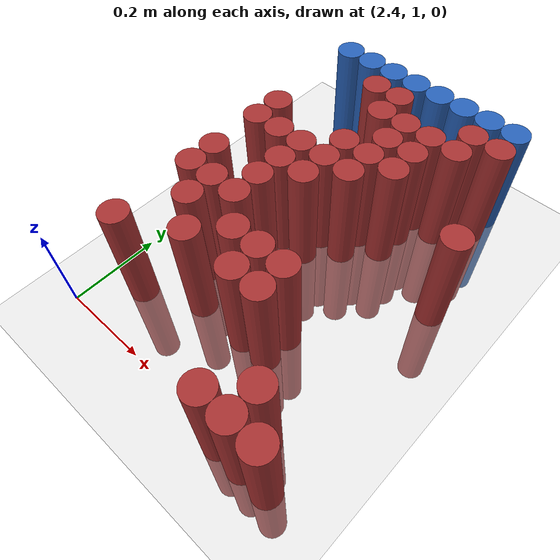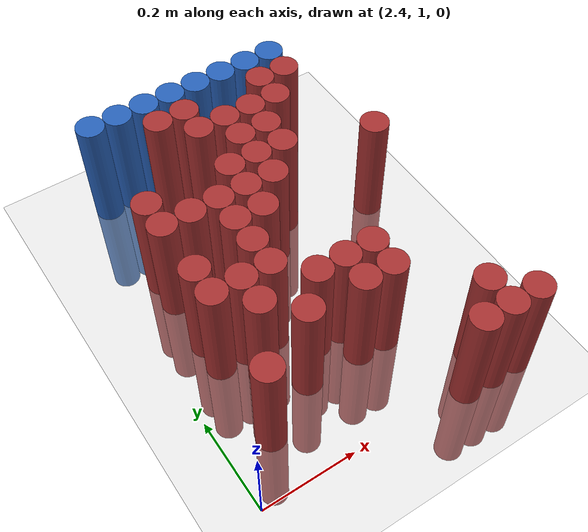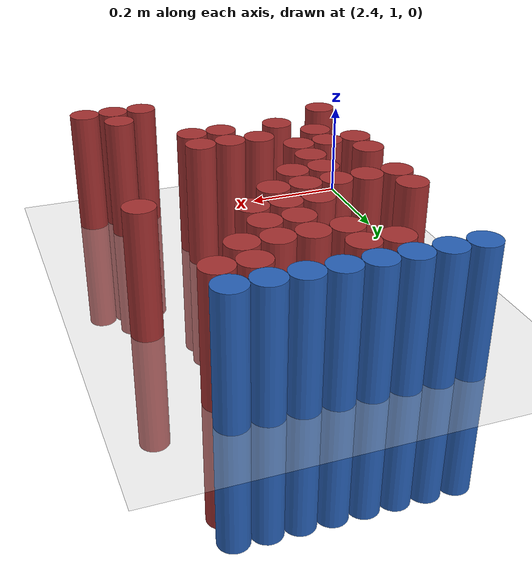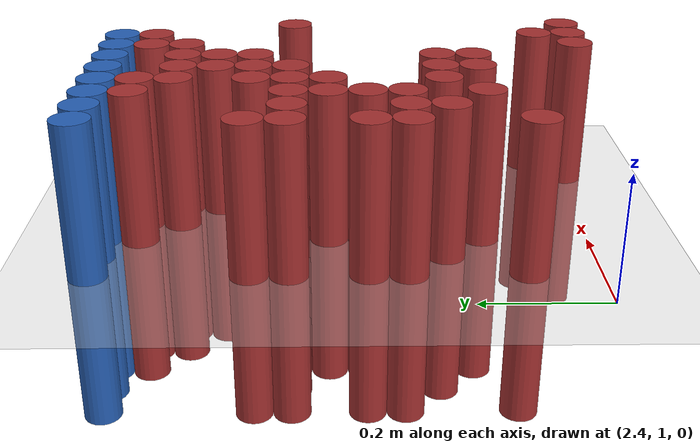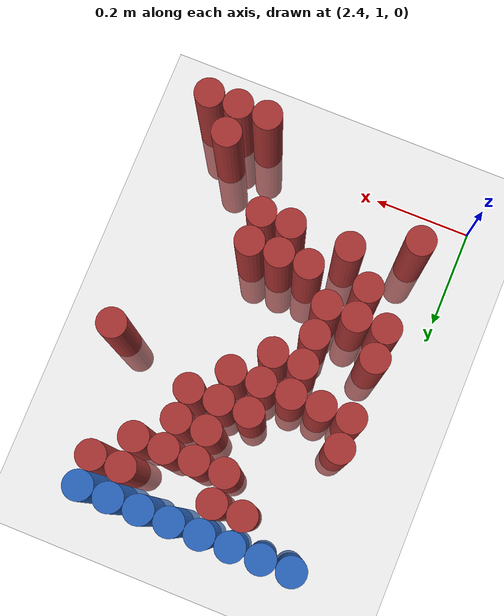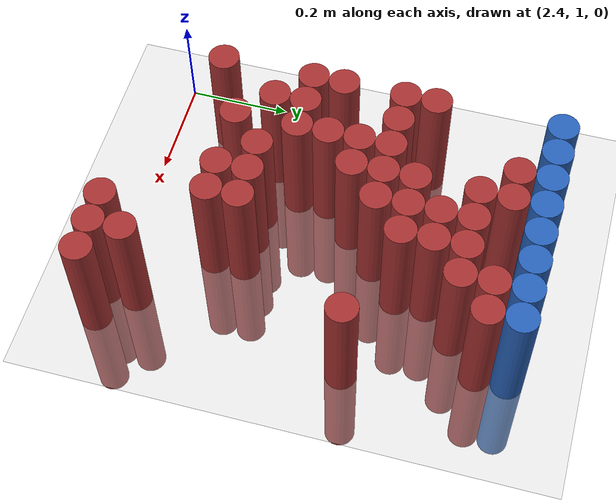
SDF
<sdf version="1.6">
 <world name="default">
  <model name="ground_plane">
   <static>1</static>
   <link name="link">
    <collision name="collision">
     <geometry><plane><normal>0 0 1</normal><size>100 100</size></plane></geometry>
     <surface><friction><ode><mu>100</mu><mu2>50</mu2></ode></friction></surface>
    </collision>
    <visual name="visual">
     <cast_shadows>0</cast_shadows>
     <geometry><plane><normal>0 0 1</normal><size>100 100</size></plane></geometry>
     <material>
      <script><uri>file://media/materials/scripts/gazebo.material</uri><name>Gazebo/Grey</name></script>
     </material>
    </visual>
   </link>
  </model>
  <model name="unit_cylinder_102">
   <static>1</static>
   <pose>2.490000 1.770000 0.000000 0.000000 0.000000 0.000000</pose>
   <link name="link">
    <inertial>
     <mass>1</mass>
     <inertia><ixx>0.145833</ixx><ixy>0</ixy><ixz>0</ixz><iyy>0.145833</iyy><iyz>0</iyz><izz>0.125</izz></inertia>
    </inertial>
    <collision name="collision">
     <geometry><cylinder><radius>0.030000</radius><length>0.5</length></cylinder></geometry>
    </collision>
    <visual name="visual">
     <geometry><cylinder><radius>0.030000</radius><length>0.5</length></cylinder></geometry>
     <material>
      <ambient>0.152000 0.379000 0.720000 1</ambient>
      <diffuse>0.152000 0.379000 0.720000 1</diffuse>
     </material>
     <material>
      <script><name>Gazebo/Grey</name><uri>file://media/materials/scripts/gazebo.material</uri></script>
     </material>
    </visual>
   </link>
  </model>
  <model name="unit_cylinder_103">
   <static>1</static>
   <pose>2.550000 1.770000 0.000000 0.000000 0.000000 0.000000</pose>
   <link name="link">
    <inertial>
     <mass>1</mass>
     <inertia><ixx>0.145833</ixx><ixy>0</ixy><ixz>0</ixz><iyy>0.145833</iyy><iyz>0</iyz><izz>0.125</izz></inertia>
    </inertial>
    <collision name="collision">
     <geometry><cylinder><radius>0.030000</radius><length>0.5</length></cylinder></geometry>
    </collision>
    <visual name="visual">
     <geometry><cylinder><radius>0.030000</radius><length>0.5</length></cylinder></geometry>
     <material>
      <ambient>0.152000 0.379000 0.720000 1</ambient>
      <diffuse>0.152000 0.379000 0.720000 1</diffuse>
     </material>
     <material>
      <script><name>Gazebo/Grey</name><uri>file://media/materials/scripts/gazebo.material</uri></script>
     </material>
    </visual>
   </link>
  </model>
  <model name="unit_cylinder_104">
   <static>1</static>
   <pose>2.610000 1.770000 0.000000 0.000000 0.000000 0.000000</pose>
   <link name="link">
    <inertial>
     <mass>1</mass>
     <inertia><ixx>0.145833</ixx><ixy>0</ixy><ixz>0</ixz><iyy>0.145833</iyy><iyz>0</iyz><izz>0.125</izz></inertia>
    </inertial>
    <collision name="collision">
     <geometry><cylinder><radius>0.030000</radius><length>0.5</length></cylinder></geometry>
    </collision>
    <visual name="visual">
     <geometry><cylinder><radius>0.030000</radius><length>0.5</length></cylinder></geometry>
     <material>
      <ambient>0.152000 0.379000 0.720000 1</ambient>
      <diffuse>0.152000 0.379000 0.720000 1</diffuse>
     </material>
     <material>
      <script><name>Gazebo/Grey</name><uri>file://media/materials/scripts/gazebo.material</uri></script>
     </material>
    </visual>
   </link>
  </model>
  <model name="unit_cylinder_105">
   <static>1</static>
   <pose>2.670000 1.770000 0.000000 0.000000 0.000000 0.000000</pose>
   <link name="link">
    <inertial>
     <mass>1</mass>
     <inertia><ixx>0.145833</ixx><ixy>0</ixy><ixz>0</ixz><iyy>0.145833</iyy><iyz>0</iyz><izz>0.125</izz></inertia>
    </inertial>
    <collision name="collision">
     <geometry><cylinder><radius>0.030000</radius><length>0.5</length></cylinder></geometry>
    </collision>
    <visual name="visual">
     <geometry><cylinder><radius>0.030000</radius><length>0.5</length></cylinder></geometry>
     <material>
      <ambient>0.152000 0.379000 0.720000 1</ambient>
      <diffuse>0.152000 0.379000 0.720000 1</diffuse>
     </material>
     <material>
      <script><name>Gazebo/Grey</name><uri>file://media/materials/scripts/gazebo.material</uri></script>
     </material>
    </visual>
   </link>
  </model>
  <model name="unit_cylinder_106">
   <static>1</static>
   <pose>2.730000 1.770000 0.000000 0.000000 0.000000 0.000000</pose>
   <link name="link">
    <inertial>
     <mass>1</mass>
     <inertia><ixx>0.145833</ixx><ixy>0</ixy><ixz>0</ixz><iyy>0.145833</iyy><iyz>0</iyz><izz>0.125</izz></inertia>
    </inertial>
    <collision name="collision">
     <geometry><cylinder><radius>0.030000</radius><length>0.5</length></cylinder></geometry>
    </collision>
    <visual name="visual">
     <geometry><cylinder><radius>0.030000</radius><length>0.5</length></cylinder></geometry>
     <material>
      <ambient>0.152000 0.379000 0.720000 1</ambient>
      <diffuse>0.152000 0.379000 0.720000 1</diffuse>
     </material>
     <material>
      <script><name>Gazebo/Grey</name><uri>file://media/materials/scripts/gazebo.material</uri></script>
     </material>
    </visual>
   </link>
  </model>
  <model name="unit_cylinder_107">
   <static>1</static>
   <pose>2.790000 1.770000 0.000000 0.000000 0.000000 0.000000</pose>
   <link name="link">
    <inertial>
     <mass>1</mass>
     <inertia><ixx>0.145833</ixx><ixy>0</ixy><ixz>0</ixz><iyy>0.145833</iyy><iyz>0</iyz><izz>0.125</izz></inertia>
    </inertial>
    <collision name="collision">
     <geometry><cylinder><radius>0.030000</radius><length>0.5</length></cylinder></geometry>
    </collision>
    <visual name="visual">
     <geometry><cylinder><radius>0.030000</radius><length>0.5</length></cylinder></geometry>
     <material>
      <ambient>0.152000 0.379000 0.720000 1</ambient>
      <diffuse>0.152000 0.379000 0.720000 1</diffuse>
     </material>
     <material>
      <script><name>Gazebo/Grey</name><uri>file://media/materials/scripts/gazebo.material</uri></script>
     </material>
    </visual>
   </link>
  </model>
  <model name="unit_cylinder_108">
   <static>1</static>
   <pose>2.850000 1.770000 0.000000 0.000000 0.000000 0.000000</pose>
   <link name="link">
    <inertial>
     <mass>1</mass>
     <inertia><ixx>0.145833</ixx><ixy>0</ixy><ixz>0</ixz><iyy>0.145833</iyy><iyz>0</iyz><izz>0.125</izz></inertia>
    </inertial>
    <collision name="collision">
     <geometry><cylinder><radius>0.030000</radius><length>0.5</length></cylinder></geometry>
    </collision>
    <visual name="visual">
     <geometry><cylinder><radius>0.030000</radius><length>0.5</length></cylinder></geometry>
     <material>
      <ambient>0.152000 0.379000 0.720000 1</ambient>
      <diffuse>0.152000 0.379000 0.720000 1</diffuse>
     </material>
     <material>
      <script><name>Gazebo/Grey</name><uri>file://media/materials/scripts/gazebo.material</uri></script>
     </material>
    </visual>
   </link>
  </model>
  <model name="unit_cylinder_109">
   <static>1</static>
   <pose>2.910000 1.770000 0.000000 0.000000 0.000000 0.000000</pose>
   <link name="link">
    <inertial>
     <mass>1</mass>
     <inertia><ixx>0.145833</ixx><ixy>0</ixy><ixz>0</ixz><iyy>0.145833</iyy><iyz>0</iyz><izz>0.125</izz></inertia>
    </inertial>
    <collision name="collision">
     <geometry><cylinder><radius>0.030000</radius><length>0.5</length></cylinder></geometry>
    </collision>
    <visual name="visual">
     <geometry><cylinder><radius>0.030000</radius><length>0.5</length></cylinder></geometry>
     <material>
      <ambient>0.152000 0.379000 0.720000 1</ambient>
      <diffuse>0.152000 0.379000 0.720000 1</diffuse>
     </material>
     <material>
      <script><name>Gazebo/Grey</name><uri>file://media/materials/scripts/gazebo.material</uri></script>
     </material>
    </visual>
   </link>
  </model>
  <model name="unit_cylinder_128">
   <static>1</static>
   <pose>2.610000 1.710000 0.000000 0.000000 0.000000 0.000000</pose>
   <link name="link">
    <inertial>
     <mass>1</mass>
     <inertia><ixx>0.145833</ixx><ixy>0</ixy><ixz>0</ixz><iyy>0.145833</iyy><iyz>0</iyz><izz>0.125</izz></inertia>
    </inertial>
    <collision name="collision">
     <geometry><cylinder><radius>0.030000</radius><length>0.5</length></cylinder></geometry>
    </collision>
    <visual name="visual">
     <geometry><cylinder><radius>0.030000</radius><length>0.5</length></cylinder></geometry>
     <material>
      <ambient>0.648000 0.192000 0.192000 1</ambient>
      <diffuse>0.648000 0.192000 0.192000 1</diffuse>
     </material>
     <material>
      <script><name>Gazebo/Grey</name><uri>file://media/materials/scripts/gazebo.material</uri></script>
     </material>
    </visual>
   </link>
  </model>
  <model name="unit_cylinder_129">
   <static>1</static>
   <pose>2.670000 1.710000 0.000000 0.000000 0.000000 0.000000</pose>
   <link name="link">
    <inertial>
     <mass>1</mass>
     <inertia><ixx>0.145833</ixx><ixy>0</ixy><ixz>0</ixz><iyy>0.145833</iyy><iyz>0</iyz><izz>0.125</izz></inertia>
    </inertial>
    <collision name="collision">
     <geometry><cylinder><radius>0.030000</radius><length>0.5</length></cylinder></geometry>
    </collision>
    <visual name="visual">
     <geometry><cylinder><radius>0.030000</radius><length>0.5</length></cylinder></geometry>
     <material>
      <ambient>0.648000 0.192000 0.192000 1</ambient>
      <diffuse>0.648000 0.192000 0.192000 1</diffuse>
     </material>
     <material>
      <script><name>Gazebo/Grey</name><uri>file://media/materials/scripts/gazebo.material</uri></script>
     </material>
    </visual>
   </link>
  </model>
  <model name="unit_cylinder_130">
   <static>1</static>
   <pose>2.850000 1.710000 0.000000 0.000000 0.000000 0.000000</pose>
   <link name="link">
    <inertial>
     <mass>1</mass>
     <inertia><ixx>0.145833</ixx><ixy>0</ixy><ixz>0</ixz><iyy>0.145833</iyy><iyz>0</iyz><izz>0.125</izz></inertia>
    </inertial>
    <collision name="collision">
     <geometry><cylinder><radius>0.030000</radius><length>0.5</length></cylinder></geometry>
    </collision>
    <visual name="visual">
     <geometry><cylinder><radius>0.030000</radius><length>0.5</length></cylinder></geometry>
     <material>
      <ambient>0.648000 0.192000 0.192000 1</ambient>
      <diffuse>0.648000 0.192000 0.192000 1</diffuse>
     </material>
     <material>
      <script><name>Gazebo/Grey</name><uri>file://media/materials/scripts/gazebo.material</uri></script>
     </material>
    </visual>
   </link>
  </model>
  <model name="unit_cylinder_131">
   <static>1</static>
   <pose>2.910000 1.710000 0.000000 0.000000 0.000000 0.000000</pose>
   <link name="link">
    <inertial>
     <mass>1</mass>
     <inertia><ixx>0.145833</ixx><ixy>0</ixy><ixz>0</ixz><iyy>0.145833</iyy><iyz>0</iyz><izz>0.125</izz></inertia>
    </inertial>
    <collision name="collision">
     <geometry><cylinder><radius>0.030000</radius><length>0.5</length></cylinder></geometry>
    </collision>
    <visual name="visual">
     <geometry><cylinder><radius>0.030000</radius><length>0.5</length></cylinder></geometry>
     <material>
      <ambient>0.648000 0.192000 0.192000 1</ambient>
      <diffuse>0.648000 0.192000 0.192000 1</diffuse>
     </material>
     <material>
      <script><name>Gazebo/Grey</name><uri>file://media/materials/scripts/gazebo.material</uri></script>
     </material>
    </visual>
   </link>
  </model>
  <model name="unit_cylinder_141">
   <static>1</static>
   <pose>2.670000 1.650000 0.000000 0.000000 0.000000 0.000000</pose>
   <link name="link">
    <inertial>
     <mass>1</mass>
     <inertia><ixx>0.145833</ixx><ixy>0</ixy><ixz>0</ixz><iyy>0.145833</iyy><iyz>0</iyz><izz>0.125</izz></inertia>
    </inertial>
    <collision name="collision">
     <geometry><cylinder><radius>0.030000</radius><length>0.5</length></cylinder></geometry>
    </collision>
    <visual name="visual">
     <geometry><cylinder><radius>0.030000</radius><length>0.5</length></cylinder></geometry>
     <material>
      <ambient>0.648000 0.192000 0.192000 1</ambient>
      <diffuse>0.648000 0.192000 0.192000 1</diffuse>
     </material>
     <material>
      <script><name>Gazebo/Grey</name><uri>file://media/materials/scripts/gazebo.material</uri></script>
     </material>
    </visual>
   </link>
  </model>
  <model name="unit_cylinder_142">
   <static>1</static>
   <pose>2.730000 1.650000 0.000000 0.000000 0.000000 0.000000</pose>
   <link name="link">
    <inertial>
     <mass>1</mass>
     <inertia><ixx>0.145833</ixx><ixy>0</ixy><ixz>0</ixz><iyy>0.145833</iyy><iyz>0</iyz><izz>0.125</izz></inertia>
    </inertial>
    <collision name="collision">
     <geometry><cylinder><radius>0.030000</radius><length>0.5</length></cylinder></geometry>
    </collision>
    <visual name="visual">
     <geometry><cylinder><radius>0.030000</radius><length>0.5</length></cylinder></geometry>
     <material>
      <ambient>0.648000 0.192000 0.192000 1</ambient>
      <diffuse>0.648000 0.192000 0.192000 1</diffuse>
     </material>
     <material>
      <script><name>Gazebo/Grey</name><uri>file://media/materials/scripts/gazebo.material</uri></script>
     </material>
    </visual>
   </link>
  </model>
  <model name="unit_cylinder_143">
   <static>1</static>
   <pose>2.790000 1.650000 0.000000 0.000000 0.000000 0.000000</pose>
   <link name="link">
    <inertial>
     <mass>1</mass>
     <inertia><ixx>0.145833</ixx><ixy>0</ixy><ixz>0</ixz><iyy>0.145833</iyy><iyz>0</iyz><izz>0.125</izz></inertia>
    </inertial>
    <collision name="collision">
     <geometry><cylinder><radius>0.030000</radius><length>0.5</length></cylinder></geometry>
    </collision>
    <visual name="visual">
     <geometry><cylinder><radius>0.030000</radius><length>0.5</length></cylinder></geometry>
     <material>
      <ambient>0.648000 0.192000 0.192000 1</ambient>
      <diffuse>0.648000 0.192000 0.192000 1</diffuse>
     </material>
     <material>
      <script><name>Gazebo/Grey</name><uri>file://media/materials/scripts/gazebo.material</uri></script>
     </material>
    </visual>
   </link>
  </model>
  <model name="unit_cylinder_144">
   <static>1</static>
   <pose>2.850000 1.650000 0.000000 0.000000 0.000000 0.000000</pose>
   <link name="link">
    <inertial>
     <mass>1</mass>
     <inertia><ixx>0.145833</ixx><ixy>0</ixy><ixz>0</ixz><iyy>0.145833</iyy><iyz>0</iyz><izz>0.125</izz></inertia>
    </inertial>
    <collision name="collision">
     <geometry><cylinder><radius>0.030000</radius><length>0.5</length></cylinder></geometry>
    </collision>
    <visual name="visual">
     <geometry><cylinder><radius>0.030000</radius><length>0.5</length></cylinder></geometry>
     <material>
      <ambient>0.648000 0.192000 0.192000 1</ambient>
      <diffuse>0.648000 0.192000 0.192000 1</diffuse>
     </material>
     <material>
      <script><name>Gazebo/Grey</name><uri>file://media/materials/scripts/gazebo.material</uri></script>
     </material>
    </visual>
   </link>
  </model>
  <model name="unit_cylinder_151">
   <static>1</static>
   <pose>2.730000 1.590000 0.000000 0.000000 0.000000 0.000000</pose>
   <link name="link">
    <inertial>
     <mass>1</mass>
     <inertia><ixx>0.145833</ixx><ixy>0</ixy><ixz>0</ixz><iyy>0.145833</iyy><iyz>0</iyz><izz>0.125</izz></inertia>
    </inertial>
    <collision name="collision">
     <geometry><cylinder><radius>0.030000</radius><length>0.5</length></cylinder></geometry>
    </collision>
    <visual name="visual">
     <geometry><cylinder><radius>0.030000</radius><length>0.5</length></cylinder></geometry>
     <material>
      <ambient>0.648000 0.192000 0.192000 1</ambient>
      <diffuse>0.648000 0.192000 0.192000 1</diffuse>
     </material>
     <material>
      <script><name>Gazebo/Grey</name><uri>file://media/materials/scripts/gazebo.material</uri></script>
     </material>
    </visual>
   </link>
  </model>
  <model name="unit_cylinder_152">
   <static>1</static>
   <pose>2.790000 1.590000 0.000000 0.000000 0.000000 0.000000</pose>
   <link name="link">
    <inertial>
     <mass>1</mass>
     <inertia><ixx>0.145833</ixx><ixy>0</ixy><ixz>0</ixz><iyy>0.145833</iyy><iyz>0</iyz><izz>0.125</izz></inertia>
    </inertial>
    <collision name="collision">
     <geometry><cylinder><radius>0.030000</radius><length>0.5</length></cylinder></geometry>
    </collision>
    <visual name="visual">
     <geometry><cylinder><radius>0.030000</radius><length>0.5</length></cylinder></geometry>
     <material>
      <ambient>0.648000 0.192000 0.192000 1</ambient>
      <diffuse>0.648000 0.192000 0.192000 1</diffuse>
     </material>
     <material>
      <script><name>Gazebo/Grey</name><uri>file://media/materials/scripts/gazebo.material</uri></script>
     </material>
    </visual>
   </link>
  </model>
  <model name="unit_cylinder_160">
   <static>1</static>
   <pose>2.490000 1.530000 0.000000 0.000000 0.000000 0.000000</pose>
   <link name="link">
    <inertial>
     <mass>1</mass>
     <inertia><ixx>0.145833</ixx><ixy>0</ixy><ixz>0</ixz><iyy>0.145833</iyy><iyz>0</iyz><izz>0.125</izz></inertia>
    </inertial>
    <collision name="collision">
     <geometry><cylinder><radius>0.030000</radius><length>0.5</length></cylinder></geometry>
    </collision>
    <visual name="visual">
     <geometry><cylinder><radius>0.030000</radius><length>0.5</length></cylinder></geometry>
     <material>
      <ambient>0.648000 0.192000 0.192000 1</ambient>
      <diffuse>0.648000 0.192000 0.192000 1</diffuse>
     </material>
     <material>
      <script><name>Gazebo/Grey</name><uri>file://media/materials/scripts/gazebo.material</uri></script>
     </material>
    </visual>
   </link>
  </model>
  <model name="unit_cylinder_161">
   <static>1</static>
   <pose>2.670000 1.530000 0.000000 0.000000 0.000000 0.000000</pose>
   <link name="link">
    <inertial>
     <mass>1</mass>
     <inertia><ixx>0.145833</ixx><ixy>0</ixy><ixz>0</ixz><iyy>0.145833</iyy><iyz>0</iyz><izz>0.125</izz></inertia>
    </inertial>
    <collision name="collision">
     <geometry><cylinder><radius>0.030000</radius><length>0.5</length></cylinder></geometry>
    </collision>
    <visual name="visual">
     <geometry><cylinder><radius>0.030000</radius><length>0.5</length></cylinder></geometry>
     <material>
      <ambient>0.648000 0.192000 0.192000 1</ambient>
      <diffuse>0.648000 0.192000 0.192000 1</diffuse>
     </material>
     <material>
      <script><name>Gazebo/Grey</name><uri>file://media/materials/scripts/gazebo.material</uri></script>
     </material>
    </visual>
   </link>
  </model>
  <model name="unit_cylinder_162">
   <static>1</static>
   <pose>2.730000 1.530000 0.000000 0.000000 0.000000 0.000000</pose>
   <link name="link">
    <inertial>
     <mass>1</mass>
     <inertia><ixx>0.145833</ixx><ixy>0</ixy><ixz>0</ixz><iyy>0.145833</iyy><iyz>0</iyz><izz>0.125</izz></inertia>
    </inertial>
    <collision name="collision">
     <geometry><cylinder><radius>0.030000</radius><length>0.5</length></cylinder></geometry>
    </collision>
    <visual name="visual">
     <geometry><cylinder><radius>0.030000</radius><length>0.5</length></cylinder></geometry>
     <material>
      <ambient>0.648000 0.192000 0.192000 1</ambient>
      <diffuse>0.648000 0.192000 0.192000 1</diffuse>
     </material>
     <material>
      <script><name>Gazebo/Grey</name><uri>file://media/materials/scripts/gazebo.material</uri></script>
     </material>
    </visual>
   </link>
  </model>
  <model name="unit_cylinder_163">
   <static>1</static>
   <pose>2.790000 1.530000 0.000000 0.000000 0.000000 0.000000</pose>
   <link name="link">
    <inertial>
     <mass>1</mass>
     <inertia><ixx>0.145833</ixx><ixy>0</ixy><ixz>0</ixz><iyy>0.145833</iyy><iyz>0</iyz><izz>0.125</izz></inertia>
    </inertial>
    <collision name="collision">
     <geometry><cylinder><radius>0.030000</radius><length>0.5</length></cylinder></geometry>
    </collision>
    <visual name="visual">
     <geometry><cylinder><radius>0.030000</radius><length>0.5</length></cylinder></geometry>
     <material>
      <ambient>0.648000 0.192000 0.192000 1</ambient>
      <diffuse>0.648000 0.192000 0.192000 1</diffuse>
     </material>
     <material>
      <script><name>Gazebo/Grey</name><uri>file://media/materials/scripts/gazebo.material</uri></script>
     </material>
    </visual>
   </link>
  </model>
  <model name="unit_cylinder_175">
   <static>1</static>
   <pose>2.490000 1.470000 0.000000 0.000000 0.000000 0.000000</pose>
   <link name="link">
    <inertial>
     <mass>1</mass>
     <inertia><ixx>0.145833</ixx><ixy>0</ixy><ixz>0</ixz><iyy>0.145833</iyy><iyz>0</iyz><izz>0.125</izz></inertia>
    </inertial>
    <collision name="collision">
     <geometry><cylinder><radius>0.030000</radius><length>0.5</length></cylinder></geometry>
    </collision>
    <visual name="visual">
     <geometry><cylinder><radius>0.030000</radius><length>0.5</length></cylinder></geometry>
     <material>
      <ambient>0.648000 0.192000 0.192000 1</ambient>
      <diffuse>0.648000 0.192000 0.192000 1</diffuse>
     </material>
     <material>
      <script><name>Gazebo/Grey</name><uri>file://media/materials/scripts/gazebo.material</uri></script>
     </material>
    </visual>
   </link>
  </model>
  <model name="unit_cylinder_176">
   <static>1</static>
   <pose>2.550000 1.470000 0.000000 0.000000 0.000000 0.000000</pose>
   <link name="link">
    <inertial>
     <mass>1</mass>
     <inertia><ixx>0.145833</ixx><ixy>0</ixy><ixz>0</ixz><iyy>0.145833</iyy><iyz>0</iyz><izz>0.125</izz></inertia>
    </inertial>
    <collision name="collision">
     <geometry><cylinder><radius>0.030000</radius><length>0.5</length></cylinder></geometry>
    </collision>
    <visual name="visual">
     <geometry><cylinder><radius>0.030000</radius><length>0.5</length></cylinder></geometry>
     <material>
      <ambient>0.648000 0.192000 0.192000 1</ambient>
      <diffuse>0.648000 0.192000 0.192000 1</diffuse>
     </material>
     <material>
      <script><name>Gazebo/Grey</name><uri>file://media/materials/scripts/gazebo.material</uri></script>
     </material>
    </visual>
   </link>
  </model>
  <model name="unit_cylinder_177">
   <static>1</static>
   <pose>2.610000 1.470000 0.000000 0.000000 0.000000 0.000000</pose>
   <link name="link">
    <inertial>
     <mass>1</mass>
     <inertia><ixx>0.145833</ixx><ixy>0</ixy><ixz>0</ixz><iyy>0.145833</iyy><iyz>0</iyz><izz>0.125</izz></inertia>
    </inertial>
    <collision name="collision">
     <geometry><cylinder><radius>0.030000</radius><length>0.5</length></cylinder></geometry>
    </collision>
    <visual name="visual">
     <geometry><cylinder><radius>0.030000</radius><length>0.5</length></cylinder></geometry>
     <material>
      <ambient>0.648000 0.192000 0.192000 1</ambient>
      <diffuse>0.648000 0.192000 0.192000 1</diffuse>
     </material>
     <material>
      <script><name>Gazebo/Grey</name><uri>file://media/materials/scripts/gazebo.material</uri></script>
     </material>
    </visual>
   </link>
  </model>
  <model name="unit_cylinder_178">
   <static>1</static>
   <pose>2.670000 1.470000 0.000000 0.000000 0.000000 0.000000</pose>
   <link name="link">
    <inertial>
     <mass>1</mass>
     <inertia><ixx>0.145833</ixx><ixy>0</ixy><ixz>0</ixz><iyy>0.145833</iyy><iyz>0</iyz><izz>0.125</izz></inertia>
    </inertial>
    <collision name="collision">
     <geometry><cylinder><radius>0.030000</radius><length>0.5</length></cylinder></geometry>
    </collision>
    <visual name="visual">
     <geometry><cylinder><radius>0.030000</radius><length>0.5</length></cylinder></geometry>
     <material>
      <ambient>0.648000 0.192000 0.192000 1</ambient>
      <diffuse>0.648000 0.192000 0.192000 1</diffuse>
     </material>
     <material>
      <script><name>Gazebo/Grey</name><uri>file://media/materials/scripts/gazebo.material</uri></script>
     </material>
    </visual>
   </link>
  </model>
  <model name="unit_cylinder_179">
   <static>1</static>
   <pose>2.730000 1.470000 0.000000 0.000000 0.000000 0.000000</pose>
   <link name="link">
    <inertial>
     <mass>1</mass>
     <inertia><ixx>0.145833</ixx><ixy>0</ixy><ixz>0</ixz><iyy>0.145833</iyy><iyz>0</iyz><izz>0.125</izz></inertia>
    </inertial>
    <collision name="collision">
     <geometry><cylinder><radius>0.030000</radius><length>0.5</length></cylinder></geometry>
    </collision>
    <visual name="visual">
     <geometry><cylinder><radius>0.030000</radius><length>0.5</length></cylinder></geometry>
     <material>
      <ambient>0.648000 0.192000 0.192000 1</ambient>
      <diffuse>0.648000 0.192000 0.192000 1</diffuse>
     </material>
     <material>
      <script><name>Gazebo/Grey</name><uri>file://media/materials/scripts/gazebo.material</uri></script>
     </material>
    </visual>
   </link>
  </model>
  <model name="unit_cylinder_180">
   <static>1</static>
   <pose>2.970000 1.470000 0.000000 0.000000 0.000000 0.000000</pose>
   <link name="link">
    <inertial>
     <mass>1</mass>
     <inertia><ixx>0.145833</ixx><ixy>0</ixy><ixz>0</ixz><iyy>0.145833</iyy><iyz>0</iyz><izz>0.125</izz></inertia>
    </inertial>
    <collision name="collision">
     <geometry><cylinder><radius>0.030000</radius><length>0.5</length></cylinder></geometry>
    </collision>
    <visual name="visual">
     <geometry><cylinder><radius>0.030000</radius><length>0.5</length></cylinder></geometry>
     <material>
      <ambient>0.648000 0.192000 0.192000 1</ambient>
      <diffuse>0.648000 0.192000 0.192000 1</diffuse>
     </material>
     <material>
      <script><name>Gazebo/Grey</name><uri>file://media/materials/scripts/gazebo.material</uri></script>
     </material>
    </visual>
   </link>
  </model>
  <model name="unit_cylinder_189">
   <static>1</static>
   <pose>2.610000 1.410000 0.000000 0.000000 0.000000 0.000000</pose>
   <link name="link">
    <inertial>
     <mass>1</mass>
     <inertia><ixx>0.145833</ixx><ixy>0</ixy><ixz>0</ixz><iyy>0.145833</iyy><iyz>0</iyz><izz>0.125</izz></inertia>
    </inertial>
    <collision name="collision">
     <geometry><cylinder><radius>0.030000</radius><length>0.5</length></cylinder></geometry>
    </collision>
    <visual name="visual">
     <geometry><cylinder><radius>0.030000</radius><length>0.5</length></cylinder></geometry>
     <material>
      <ambient>0.648000 0.192000 0.192000 1</ambient>
      <diffuse>0.648000 0.192000 0.192000 1</diffuse>
     </material>
     <material>
      <script><name>Gazebo/Grey</name><uri>file://media/materials/scripts/gazebo.material</uri></script>
     </material>
    </visual>
   </link>
  </model>
  <model name="unit_cylinder_190">
   <static>1</static>
   <pose>2.670000 1.410000 0.000000 0.000000 0.000000 0.000000</pose>
   <link name="link">
    <inertial>
     <mass>1</mass>
     <inertia><ixx>0.145833</ixx><ixy>0</ixy><ixz>0</ixz><iyy>0.145833</iyy><iyz>0</iyz><izz>0.125</izz></inertia>
    </inertial>
    <collision name="collision">
     <geometry><cylinder><radius>0.030000</radius><length>0.5</length></cylinder></geometry>
    </collision>
    <visual name="visual">
     <geometry><cylinder><radius>0.030000</radius><length>0.5</length></cylinder></geometry>
     <material>
      <ambient>0.648000 0.192000 0.192000 1</ambient>
      <diffuse>0.648000 0.192000 0.192000 1</diffuse>
     </material>
     <material>
      <script><name>Gazebo/Grey</name><uri>file://media/materials/scripts/gazebo.material</uri></script>
     </material>
    </visual>
   </link>
  </model>
  <model name="unit_cylinder_197">
   <static>1</static>
   <pose>2.490000 1.350000 0.000000 0.000000 0.000000 0.000000</pose>
   <link name="link">
    <inertial>
     <mass>1</mass>
     <inertia><ixx>0.145833</ixx><ixy>0</ixy><ixz>0</ixz><iyy>0.145833</iyy><iyz>0</iyz><izz>0.125</izz></inertia>
    </inertial>
    <collision name="collision">
     <geometry><cylinder><radius>0.030000</radius><length>0.5</length></cylinder></geometry>
    </collision>
    <visual name="visual">
     <geometry><cylinder><radius>0.030000</radius><length>0.5</length></cylinder></geometry>
     <material>
      <ambient>0.648000 0.192000 0.192000 1</ambient>
      <diffuse>0.648000 0.192000 0.192000 1</diffuse>
     </material>
     <material>
      <script><name>Gazebo/Grey</name><uri>file://media/materials/scripts/gazebo.material</uri></script>
     </material>
    </visual>
   </link>
  </model>
  <model name="unit_cylinder_198">
   <static>1</static>
   <pose>2.610000 1.350000 0.000000 0.000000 0.000000 0.000000</pose>
   <link name="link">
    <inertial>
     <mass>1</mass>
     <inertia><ixx>0.145833</ixx><ixy>0</ixy><ixz>0</ixz><iyy>0.145833</iyy><iyz>0</iyz><izz>0.125</izz></inertia>
    </inertial>
    <collision name="collision">
     <geometry><cylinder><radius>0.030000</radius><length>0.5</length></cylinder></geometry>
    </collision>
    <visual name="visual">
     <geometry><cylinder><radius>0.030000</radius><length>0.5</length></cylinder></geometry>
     <material>
      <ambient>0.648000 0.192000 0.192000 1</ambient>
      <diffuse>0.648000 0.192000 0.192000 1</diffuse>
     </material>
     <material>
      <script><name>Gazebo/Grey</name><uri>file://media/materials/scripts/gazebo.material</uri></script>
     </material>
    </visual>
   </link>
  </model>
  <model name="unit_cylinder_202">
   <static>1</static>
   <pose>2.490000 1.290000 0.000000 0.000000 0.000000 0.000000</pose>
   <link name="link">
    <inertial>
     <mass>1</mass>
     <inertia><ixx>0.145833</ixx><ixy>0</ixy><ixz>0</ixz><iyy>0.145833</iyy><iyz>0</iyz><izz>0.125</izz></inertia>
    </inertial>
    <collision name="collision">
     <geometry><cylinder><radius>0.030000</radius><length>0.5</length></cylinder></geometry>
    </collision>
    <visual name="visual">
     <geometry><cylinder><radius>0.030000</radius><length>0.5</length></cylinder></geometry>
     <material>
      <ambient>0.648000 0.192000 0.192000 1</ambient>
      <diffuse>0.648000 0.192000 0.192000 1</diffuse>
     </material>
     <material>
      <script><name>Gazebo/Grey</name><uri>file://media/materials/scripts/gazebo.material</uri></script>
     </material>
    </visual>
   </link>
  </model>
  <model name="unit_cylinder_203">
   <static>1</static>
   <pose>2.550000 1.290000 0.000000 0.000000 0.000000 0.000000</pose>
   <link name="link">
    <inertial>
     <mass>1</mass>
     <inertia><ixx>0.145833</ixx><ixy>0</ixy><ixz>0</ixz><iyy>0.145833</iyy><iyz>0</iyz><izz>0.125</izz></inertia>
    </inertial>
    <collision name="collision">
     <geometry><cylinder><radius>0.030000</radius><length>0.5</length></cylinder></geometry>
    </collision>
    <visual name="visual">
     <geometry><cylinder><radius>0.030000</radius><length>0.5</length></cylinder></geometry>
     <material>
      <ambient>0.648000 0.192000 0.192000 1</ambient>
      <diffuse>0.648000 0.192000 0.192000 1</diffuse>
     </material>
     <material>
      <script><name>Gazebo/Grey</name><uri>file://media/materials/scripts/gazebo.material</uri></script>
     </material>
    </visual>
   </link>
  </model>
  <model name="unit_cylinder_204">
   <static>1</static>
   <pose>2.610000 1.290000 0.000000 0.000000 0.000000 0.000000</pose>
   <link name="link">
    <inertial>
     <mass>1</mass>
     <inertia><ixx>0.145833</ixx><ixy>0</ixy><ixz>0</ixz><iyy>0.145833</iyy><iyz>0</iyz><izz>0.125</izz></inertia>
    </inertial>
    <collision name="collision">
     <geometry><cylinder><radius>0.030000</radius><length>0.5</length></cylinder></geometry>
    </collision>
    <visual name="visual">
     <geometry><cylinder><radius>0.030000</radius><length>0.5</length></cylinder></geometry>
     <material>
      <ambient>0.648000 0.192000 0.192000 1</ambient>
      <diffuse>0.648000 0.192000 0.192000 1</diffuse>
     </material>
     <material>
      <script><name>Gazebo/Grey</name><uri>file://media/materials/scripts/gazebo.material</uri></script>
     </material>
    </visual>
   </link>
  </model>
  <model name="unit_cylinder_208">
   <static>1</static>
   <pose>2.550000 1.230000 0.000000 0.000000 0.000000 0.000000</pose>
   <link name="link">
    <inertial>
     <mass>1</mass>
     <inertia><ixx>0.145833</ixx><ixy>0</ixy><ixz>0</ixz><iyy>0.145833</iyy><iyz>0</iyz><izz>0.125</izz></inertia>
    </inertial>
    <collision name="collision">
     <geometry><cylinder><radius>0.030000</radius><length>0.5</length></cylinder></geometry>
    </collision>
    <visual name="visual">
     <geometry><cylinder><radius>0.030000</radius><length>0.5</length></cylinder></geometry>
     <material>
      <ambient>0.648000 0.192000 0.192000 1</ambient>
      <diffuse>0.648000 0.192000 0.192000 1</diffuse>
     </material>
     <material>
      <script><name>Gazebo/Grey</name><uri>file://media/materials/scripts/gazebo.material</uri></script>
     </material>
    </visual>
   </link>
  </model>
  <model name="unit_cylinder_209">
   <static>1</static>
   <pose>2.670000 1.230000 0.000000 0.000000 0.000000 0.000000</pose>
   <link name="link">
    <inertial>
     <mass>1</mass>
     <inertia><ixx>0.145833</ixx><ixy>0</ixy><ixz>0</ixz><iyy>0.145833</iyy><iyz>0</iyz><izz>0.125</izz></inertia>
    </inertial>
    <collision name="collision">
     <geometry><cylinder><radius>0.030000</radius><length>0.5</length></cylinder></geometry>
    </collision>
    <visual name="visual">
     <geometry><cylinder><radius>0.030000</radius><length>0.5</length></cylinder></geometry>
     <material>
      <ambient>0.648000 0.192000 0.192000 1</ambient>
      <diffuse>0.648000 0.192000 0.192000 1</diffuse>
     </material>
     <material>
      <script><name>Gazebo/Grey</name><uri>file://media/materials/scripts/gazebo.material</uri></script>
     </material>
    </visual>
   </link>
  </model>
  <model name="unit_cylinder_210">
   <static>1</static>
   <pose>2.730000 1.230000 0.000000 0.000000 0.000000 0.000000</pose>
   <link name="link">
    <inertial>
     <mass>1</mass>
     <inertia><ixx>0.145833</ixx><ixy>0</ixy><ixz>0</ixz><iyy>0.145833</iyy><iyz>0</iyz><izz>0.125</izz></inertia>
    </inertial>
    <collision name="collision">
     <geometry><cylinder><radius>0.030000</radius><length>0.5</length></cylinder></geometry>
    </collision>
    <visual name="visual">
     <geometry><cylinder><radius>0.030000</radius><length>0.5</length></cylinder></geometry>
     <material>
      <ambient>0.648000 0.192000 0.192000 1</ambient>
      <diffuse>0.648000 0.192000 0.192000 1</diffuse>
     </material>
     <material>
      <script><name>Gazebo/Grey</name><uri>file://media/materials/scripts/gazebo.material</uri></script>
     </material>
    </visual>
   </link>
  </model>
  <model name="unit_cylinder_211">
   <static>1</static>
   <pose>2.790000 1.230000 0.000000 0.000000 0.000000 0.000000</pose>
   <link name="link">
    <inertial>
     <mass>1</mass>
     <inertia><ixx>0.145833</ixx><ixy>0</ixy><ixz>0</ixz><iyy>0.145833</iyy><iyz>0</iyz><izz>0.125</izz></inertia>
    </inertial>
    <collision name="collision">
     <geometry><cylinder><radius>0.030000</radius><length>0.5</length></cylinder></geometry>
    </collision>
    <visual name="visual">
     <geometry><cylinder><radius>0.030000</radius><length>0.5</length></cylinder></geometry>
     <material>
      <ambient>0.648000 0.192000 0.192000 1</ambient>
      <diffuse>0.648000 0.192000 0.192000 1</diffuse>
     </material>
     <material>
      <script><name>Gazebo/Grey</name><uri>file://media/materials/scripts/gazebo.material</uri></script>
     </material>
    </visual>
   </link>
  </model>
  <model name="unit_cylinder_214">
   <static>1</static>
   <pose>2.610000 1.170000 0.000000 0.000000 0.000000 0.000000</pose>
   <link name="link">
    <inertial>
     <mass>1</mass>
     <inertia><ixx>0.145833</ixx><ixy>0</ixy><ixz>0</ixz><iyy>0.145833</iyy><iyz>0</iyz><izz>0.125</izz></inertia>
    </inertial>
    <collision name="collision">
     <geometry><cylinder><radius>0.030000</radius><length>0.5</length></cylinder></geometry>
    </collision>
    <visual name="visual">
     <geometry><cylinder><radius>0.030000</radius><length>0.5</length></cylinder></geometry>
     <material>
      <ambient>0.648000 0.192000 0.192000 1</ambient>
      <diffuse>0.648000 0.192000 0.192000 1</diffuse>
     </material>
     <material>
      <script><name>Gazebo/Grey</name><uri>file://media/materials/scripts/gazebo.material</uri></script>
     </material>
    </visual>
   </link>
  </model>
  <model name="unit_cylinder_215">
   <static>1</static>
   <pose>2.730000 1.170000 0.000000 0.000000 0.000000 0.000000</pose>
   <link name="link">
    <inertial>
     <mass>1</mass>
     <inertia><ixx>0.145833</ixx><ixy>0</ixy><ixz>0</ixz><iyy>0.145833</iyy><iyz>0</iyz><izz>0.125</izz></inertia>
    </inertial>
    <collision name="collision">
     <geometry><cylinder><radius>0.030000</radius><length>0.5</length></cylinder></geometry>
    </collision>
    <visual name="visual">
     <geometry><cylinder><radius>0.030000</radius><length>0.5</length></cylinder></geometry>
     <material>
      <ambient>0.648000 0.192000 0.192000 1</ambient>
      <diffuse>0.648000 0.192000 0.192000 1</diffuse>
     </material>
     <material>
      <script><name>Gazebo/Grey</name><uri>file://media/materials/scripts/gazebo.material</uri></script>
     </material>
    </visual>
   </link>
  </model>
  <model name="unit_cylinder_216">
   <static>1</static>
   <pose>2.790000 1.170000 0.000000 0.000000 0.000000 0.000000</pose>
   <link name="link">
    <inertial>
     <mass>1</mass>
     <inertia><ixx>0.145833</ixx><ixy>0</ixy><ixz>0</ixz><iyy>0.145833</iyy><iyz>0</iyz><izz>0.125</izz></inertia>
    </inertial>
    <collision name="collision">
     <geometry><cylinder><radius>0.030000</radius><length>0.5</length></cylinder></geometry>
    </collision>
    <visual name="visual">
     <geometry><cylinder><radius>0.030000</radius><length>0.5</length></cylinder></geometry>
     <material>
      <ambient>0.648000 0.192000 0.192000 1</ambient>
      <diffuse>0.648000 0.192000 0.192000 1</diffuse>
     </material>
     <material>
      <script><name>Gazebo/Grey</name><uri>file://media/materials/scripts/gazebo.material</uri></script>
     </material>
    </visual>
   </link>
  </model>
  <model name="unit_cylinder_217">
   <static>1</static>
   <pose>2.490000 1.110000 0.000000 0.000000 0.000000 0.000000</pose>
   <link name="link">
    <inertial>
     <mass>1</mass>
     <inertia><ixx>0.145833</ixx><ixy>0</ixy><ixz>0</ixz><iyy>0.145833</iyy><iyz>0</iyz><izz>0.125</izz></inertia>
    </inertial>
    <collision name="collision">
     <geometry><cylinder><radius>0.030000</radius><length>0.5</length></cylinder></geometry>
    </collision>
    <visual name="visual">
     <geometry><cylinder><radius>0.030000</radius><length>0.5</length></cylinder></geometry>
     <material>
      <ambient>0.648000 0.192000 0.192000 1</ambient>
      <diffuse>0.648000 0.192000 0.192000 1</diffuse>
     </material>
     <material>
      <script><name>Gazebo/Grey</name><uri>file://media/materials/scripts/gazebo.material</uri></script>
     </material>
    </visual>
   </link>
  </model>
  <model name="unit_cylinder_219">
   <static>1</static>
   <pose>2.910000 1.050000 0.000000 0.000000 0.000000 0.000000</pose>
   <link name="link">
    <inertial>
     <mass>1</mass>
     <inertia><ixx>0.145833</ixx><ixy>0</ixy><ixz>0</ixz><iyy>0.145833</iyy><iyz>0</iyz><izz>0.125</izz></inertia>
    </inertial>
    <collision name="collision">
     <geometry><cylinder><radius>0.030000</radius><length>0.5</length></cylinder></geometry>
    </collision>
    <visual name="visual">
     <geometry><cylinder><radius>0.030000</radius><length>0.5</length></cylinder></geometry>
     <material>
      <ambient>0.648000 0.192000 0.192000 1</ambient>
      <diffuse>0.648000 0.192000 0.192000 1</diffuse>
     </material>
     <material>
      <script><name>Gazebo/Grey</name><uri>file://media/materials/scripts/gazebo.material</uri></script>
     </material>
    </visual>
   </link>
  </model>
  <model name="unit_cylinder_223">
   <static>1</static>
   <pose>2.850000 0.990000 0.000000 0.000000 0.000000 0.000000</pose>
   <link name="link">
    <inertial>
     <mass>1</mass>
     <inertia><ixx>0.145833</ixx><ixy>0</ixy><ixz>0</ixz><iyy>0.145833</iyy><iyz>0</iyz><izz>0.125</izz></inertia>
    </inertial>
    <collision name="collision">
     <geometry><cylinder><radius>0.030000</radius><length>0.5</length></cylinder></geometry>
    </collision>
    <visual name="visual">
     <geometry><cylinder><radius>0.030000</radius><length>0.5</length></cylinder></geometry>
     <material>
      <ambient>0.648000 0.192000 0.192000 1</ambient>
      <diffuse>0.648000 0.192000 0.192000 1</diffuse>
     </material>
     <material>
      <script><name>Gazebo/Grey</name><uri>file://media/materials/scripts/gazebo.material</uri></script>
     </material>
    </visual>
   </link>
  </model>
  <model name="unit_cylinder_224">
   <static>1</static>
   <pose>2.910000 0.990000 0.000000 0.000000 0.000000 0.000000</pose>
   <link name="link">
    <inertial>
     <mass>1</mass>
     <inertia><ixx>0.145833</ixx><ixy>0</ixy><ixz>0</ixz><iyy>0.145833</iyy><iyz>0</iyz><izz>0.125</izz></inertia>
    </inertial>
    <collision name="collision">
     <geometry><cylinder><radius>0.030000</radius><length>0.5</length></cylinder></geometry>
    </collision>
    <visual name="visual">
     <geometry><cylinder><radius>0.030000</radius><length>0.5</length></cylinder></geometry>
     <material>
      <ambient>0.648000 0.192000 0.192000 1</ambient>
      <diffuse>0.648000 0.192000 0.192000 1</diffuse>
     </material>
     <material>
      <script><name>Gazebo/Grey</name><uri>file://media/materials/scripts/gazebo.material</uri></script>
     </material>
    </visual>
   </link>
  </model>
  <model name="unit_cylinder_225">
   <static>1</static>
   <pose>2.970000 0.990000 0.000000 0.000000 0.000000 0.000000</pose>
   <link name="link">
    <inertial>
     <mass>1</mass>
     <inertia><ixx>0.145833</ixx><ixy>0</ixy><ixz>0</ixz><iyy>0.145833</iyy><iyz>0</iyz><izz>0.125</izz></inertia>
    </inertial>
    <collision name="collision">
     <geometry><cylinder><radius>0.030000</radius><length>0.5</length></cylinder></geometry>
    </collision>
    <visual name="visual">
     <geometry><cylinder><radius>0.030000</radius><length>0.5</length></cylinder></geometry>
     <material>
      <ambient>0.648000 0.192000 0.192000 1</ambient>
      <diffuse>0.648000 0.192000 0.192000 1</diffuse>
     </material>
     <material>
      <script><name>Gazebo/Grey</name><uri>file://media/materials/scripts/gazebo.material</uri></script>
     </material>
    </visual>
   </link>
  </model>
 </world>
</sdf>
